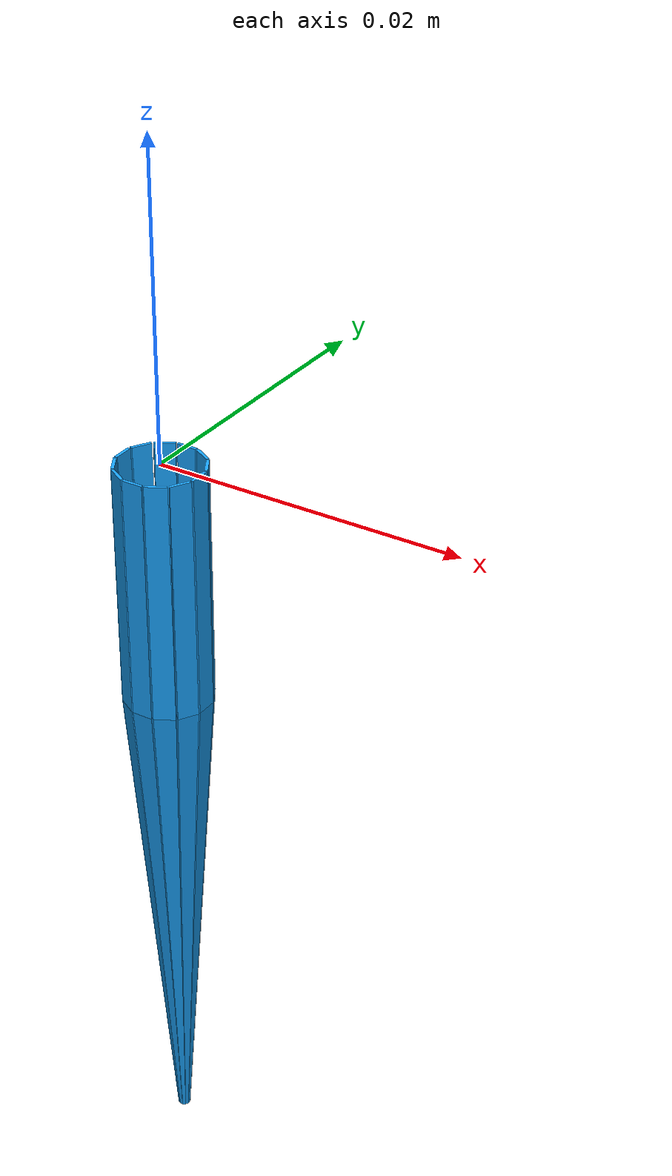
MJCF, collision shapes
<mujoco model="pipette_tip_detachable">
  <compiler angle="radian" />

  <asset>
    <mesh name="pipette_tip_visual" file="/data/tianang/projects/AutoBio/autobio/assets/container/tip_200ul_vis/visual.obj" scale="0.001 0.001 0.001" />
    <mesh name="tip_upper_ring_wedge" file="../assets/tip_200ul_upper_ring_wedge_12.obj" scale="0.001 0.001 0.001" />
    <mesh name="tip_lower_cone_wedge" file="../assets/tip_200ul_lower_cone_wedge_12.obj" scale="0.001 0.001 0.001" />

    <material name="tip_clear" rgba="1 1 1 0.5" />
    <material name="tip_collision" rgba="0.1 0.65 1 0.35" />
  </asset>

  <worldbody>
    <body name="pipette_tip">
      <geom name="tip_visual" type="mesh" contype="0" conaffinity="0" group="2" mesh="pipette_tip_visual" material="tip_clear" />

      <geom name="ring_block_00" type="mesh" mesh="tip_upper_ring_wedge" euler="0 0 0" group="3" material="tip_collision" />
      <geom name="ring_block_01" type="mesh" mesh="tip_upper_ring_wedge" euler="0 0 0.523598775598" group="3" material="tip_collision" />
      <geom name="ring_block_02" type="mesh" mesh="tip_upper_ring_wedge" euler="0 0 1.0471975512" group="3" material="tip_collision" />
      <geom name="ring_block_03" type="mesh" mesh="tip_upper_ring_wedge" euler="0 0 1.57079632679" group="3" material="tip_collision" />
      <geom name="ring_block_04" type="mesh" mesh="tip_upper_ring_wedge" euler="0 0 2.09439510239" group="3" material="tip_collision" />
      <geom name="ring_block_05" type="mesh" mesh="tip_upper_ring_wedge" euler="0 0 2.61799387799" group="3" material="tip_collision" />
      <geom name="ring_block_06" type="mesh" mesh="tip_upper_ring_wedge" euler="0 0 3.14159265359" group="3" material="tip_collision" />
      <geom name="ring_block_07" type="mesh" mesh="tip_upper_ring_wedge" euler="0 0 3.66519142919" group="3" material="tip_collision" />
      <geom name="ring_block_08" type="mesh" mesh="tip_upper_ring_wedge" euler="0 0 4.18879020479" group="3" material="tip_collision" />
      <geom name="ring_block_09" type="mesh" mesh="tip_upper_ring_wedge" euler="0 0 4.71238898038" group="3" material="tip_collision" />
      <geom name="ring_block_10" type="mesh" mesh="tip_upper_ring_wedge" euler="0 0 5.23598775598" group="3" material="tip_collision" />
      <geom name="ring_block_11" type="mesh" mesh="tip_upper_ring_wedge" euler="0 0 5.75958653158" group="3" material="tip_collision" />

      <geom name="cone_block_00" type="mesh" mesh="tip_lower_cone_wedge" euler="0 0 0" group="3" material="tip_collision" />
      <geom name="cone_block_01" type="mesh" mesh="tip_lower_cone_wedge" euler="0 0 0.523598775598" group="3" material="tip_collision" />
      <geom name="cone_block_02" type="mesh" mesh="tip_lower_cone_wedge" euler="0 0 1.0471975512" group="3" material="tip_collision" />
      <geom name="cone_block_03" type="mesh" mesh="tip_lower_cone_wedge" euler="0 0 1.57079632679" group="3" material="tip_collision" />
      <geom name="cone_block_04" type="mesh" mesh="tip_lower_cone_wedge" euler="0 0 2.09439510239" group="3" material="tip_collision" />
      <geom name="cone_block_05" type="mesh" mesh="tip_lower_cone_wedge" euler="0 0 2.61799387799" group="3" material="tip_collision" />
      <geom name="cone_block_06" type="mesh" mesh="tip_lower_cone_wedge" euler="0 0 3.14159265359" group="3" material="tip_collision" />
      <geom name="cone_block_07" type="mesh" mesh="tip_lower_cone_wedge" euler="0 0 3.66519142919" group="3" material="tip_collision" />
      <geom name="cone_block_08" type="mesh" mesh="tip_lower_cone_wedge" euler="0 0 4.18879020479" group="3" material="tip_collision" />
      <geom name="cone_block_09" type="mesh" mesh="tip_lower_cone_wedge" euler="0 0 4.71238898038" group="3" material="tip_collision" />
      <geom name="cone_block_10" type="mesh" mesh="tip_lower_cone_wedge" euler="0 0 5.23598775598" group="3" material="tip_collision" />
      <geom name="cone_block_11" type="mesh" mesh="tip_lower_cone_wedge" euler="0 0 5.75958653158" group="3" material="tip_collision" />

      <site name="tip_mount_site" pos="0 0 0" type="sphere" size="0.001" rgba="0.1 0.65 1 1" group="5" />
      <site name="tip_site" pos="0 0 -0.05" type="sphere" size="0.0008" rgba="0.9 0.9 0.9 1" group="5" />
    </body>
  </worldbody>
</mujoco>
